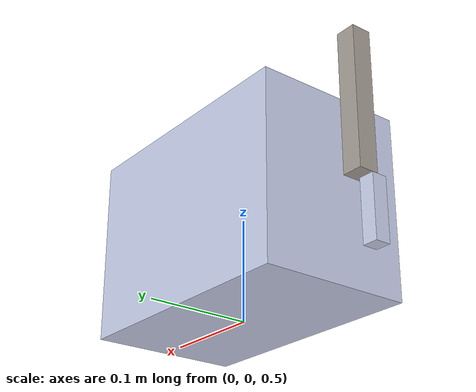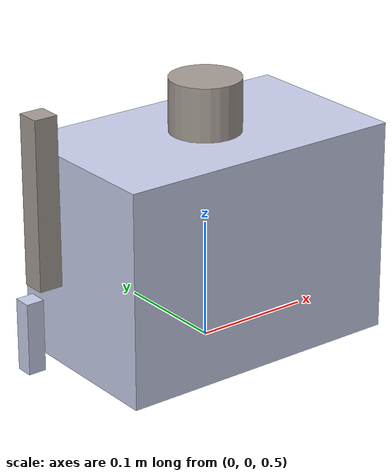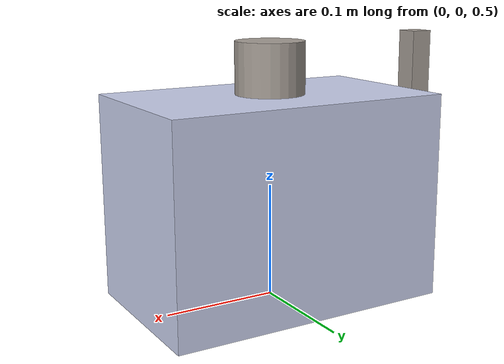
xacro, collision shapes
<?xml version="1.0"?>
<robot xmlns:xacro="http://www.ros.org/wiki/xacro" name="invert_pendulum_URDF">

    <xacro:include filename="inertial_macros.xacro" />
    <xacro:include filename="pendulum_params.xacro" />
    <xacro:include filename="robot_material.xacro" />
    <xacro:include filename="gazebo_full.xacro" />

    <!-- WORLD LINK (Fixed to ground) -->
    <link name="world"/>

    <!-- FIXED JOINT - RAISED TO PREVENT GROUND COLLISION -->
    <joint name="base" type="fixed">
        <parent link="world"/>
        <child link="base_link"/>
        <!-- Raised by 0.5m to keep pendulums above ground when hanging down -->
        <origin xyz="0 0 0.5" rpy="0 0 0"/>
    </joint>

    <!-- BASE LINK -->
    <link name="base_link">
        <xacro:inertial_box mass="${mass_base}" x="0.25" y="0.15" z="0.18">
            <origin xyz="4.35011143188239E-06 -4.26974202710915E-05 0.0926893522450359" rpy="0 0 0" />
        </xacro:inertial_box>

        <visual>
            <origin xyz="0 0 0" rpy="0 0 0" />
            <geometry>
                <mesh filename="package://double_invert_pendulum_description/meshes/base_link.STL" />
            </geometry>
            <material name="light_blue"/>
        </visual>
        <collision>
            <origin xyz="0 0 0.09" rpy="0 0 0" />
            <geometry>
                <box size="0.25 0.15 0.18"/>
            </geometry>
        </collision>
    </link>

    <!-- REVOLUTE LINK (ARM - CONTINUOUS ROTATION) -->
    <joint name="revolute_joint" type="continuous">
        <parent link="base_link"/>
        <child link="revolute_Link"/>
        <origin xyz="${revolute_joint_x} ${revolute_joint_y} ${revolute_joint_z}" rpy="0 0 0"/>
        <axis xyz="0 0 1"/>
        <limit effort="${joint_effort}" velocity="${joint_velocity}"/>
        <dynamics damping="${revolute_joint_damping}" friction="${revolute_joint_friction}"/>
    </joint>

    <link name="revolute_Link">
        <xacro:inertial_cylinder mass="${mass_revolute}" length="0.05" radius="0.03">
            <origin xyz="-0.0393104703 -0.0011200394 -0.0049654099" rpy="0 0 0" />
        </xacro:inertial_cylinder>

        <visual>
            <origin xyz="0 0 0" rpy="0 0 0" />
            <geometry>
                <mesh filename="package://double_invert_pendulum_description/meshes/revolute_Link.STL" />
            </geometry>
            <material name="brown"/>
        </visual>
        <collision>
            <origin xyz="0 0 0" rpy="0 0 0" />
            <geometry>
                <cylinder radius="0.03" length="0.05"/>
            </geometry>
        </collision>
    </link>

    <!-- FIRST PENDULUM LINK -->
    <joint name="first_pendulum_joint" type="revolute">
        <parent link="revolute_Link"/>
        <child link="first_pendulum_link"/>
        <origin xyz="${pendulum1_joint_x} ${pendulum1_joint_y} ${pendulum1_joint_z}" rpy="1.5708 0 -1.5708"/>
        <axis xyz="0 0 1"/>
        <limit effort="100.0" velocity="100.0" lower="${joint_lower_limit}" upper="${joint_upper_limit}"/>
        <dynamics damping="${first_pendulum_damping}" friction="${first_pendulum_friction}"/>
    </joint>

    <link name="first_pendulum_link">
        <xacro:inertial_box mass="${mass_pendulum1}" x="0.02" y="0.14" z="0.02">
            <origin xyz="-0.0000001372 -0.0878320187 0.0001351167" rpy="0 0 0" />
        </xacro:inertial_box>

        <visual>
            <origin xyz="0 0 0" rpy="0 0 0" />
            <geometry>
                <mesh filename="package://double_invert_pendulum_description/meshes/first_pendulum_link.STL" />
            </geometry>
            <material name="brown"/>
        </visual>
        <collision>
            <origin xyz="0 -0.065 0" rpy="0 0 0" />
            <geometry>
                <box size="0.02 0.14 0.02"/>
            </geometry>
        </collision>
    </link>

    <!-- SECOND PENDULUM LINK -->
    <joint name="second_pendulum_joint" type="revolute">
        <parent link="first_pendulum_link"/>
        <child link="second_pendulum_link"/>
        <origin xyz="${pendulum2_joint_x} ${pendulum2_joint_y} ${pendulum2_joint_z}" rpy="0 0 0"/>
        <axis xyz="0 0 1"/>
        <limit effort="100.0" velocity="100.0" lower="${joint_lower_limit}" upper="${joint_upper_limit}"/>
        <dynamics damping="${second_pendulum_damping}" friction="${second_pendulum_friction}"/>
    </joint>

    <link name="second_pendulum_link">
        <xacro:inertial_box mass="${mass_pendulum2}" x="0.015" y="0.06" z="0.015">
            <origin xyz="-0.0000028766 -0.0299439674 0.001944771" rpy="0 0 0" />
        </xacro:inertial_box>

        <visual>
            <origin xyz="0 0 0" rpy="0 0 0" />
            <geometry>
                <mesh filename="package://double_invert_pendulum_description/meshes/second_pendulum_link.STL" />
            </geometry>
            <material name="light_blue"/>
        </visual>
        <collision>
            <origin xyz="0 -0.03 0" rpy="0 0 0" />
            <geometry>
                <box size="0.015 0.06 0.015"/>
            </geometry>
        </collision>
    </link>

</robot>

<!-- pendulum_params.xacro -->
<robot xmlns:xacro="http://www.ros.org/wiki/xacro">

    <!-- Constants -->
    <xacro:property name="PI" value="3.14159265359"/>

    <!-- JOINT POSITIONS (from inverted_pendulum_new.urdf) -->

    <!-- Revolute joint (arm) position -->
    <xacro:property name="revolute_joint_x" value="0"/>
    <xacro:property name="revolute_joint_y" value="0"/>
    <xacro:property name="revolute_joint_z" value="0.2"/>

    <!-- First pendulum joint position -->
    <xacro:property name="pendulum1_joint_x" value="-0.157"/>
    <xacro:property name="pendulum1_joint_y" value="-0.0002"/>
    <xacro:property name="pendulum1_joint_z" value="0.0232"/>

    <!-- Second pendulum joint position -->
    <xacro:property name="pendulum2_joint_x" value="0"/>
    <xacro:property name="pendulum2_joint_y" value="-0.1432"/>
    <xacro:property name="pendulum2_joint_z" value="0.0135"/>

    <!-- MASSES (from inverted_pendulum_new.urdf) -->
    <xacro:property name="mass_base" value="0.951310569253784"/>
    <xacro:property name="mass_revolute" value="0.22015507085087"/>
    <xacro:property name="mass_pendulum1" value="0.190"/>  <!-- ~0.1 kg -->
    <xacro:property name="mass_pendulum2" value="0.140"/>  <!-- ~0.073 kg -->

    <!-- RESEARCH PAPER PARAMETERS -->
    <!-- From "Transition Control of a Rotary Double Inverted Pendulum Using Direct Collocation" -->

    <!-- Masses (for validation - should match above or be adjusted) -->
    <xacro:property name="M1_paper" value="0.187"/>  <!-- First pendulum mass from paper -->
    <xacro:property name="M2_paper" value="0.132"/>  <!-- Second pendulum mass from paper -->

    <!-- Center of Mass Lengths -->
    <xacro:property name="l1" value="0.072"/>   <!-- First pendulum CoM from pivot -->
    <xacro:property name="l2" value="0.133"/>   <!-- Second pendulum CoM from pivot -->

    <!-- Total Lengths -->
    <xacro:property name="L1" value="0.1645"/>  <!-- First pendulum total length -->
    <xacro:property name="R1" value="0.1625"/>  <!-- Arm radius -->
    <xacro:property name="r1" value="0.1597"/>  <!-- Additional arm parameter -->
    <xacro:property name="r2" value="0.0209"/>  <!-- Additional parameter -->

    <!-- Inertias (kg·m²) from research paper -->
    <xacro:property name="Ixx1" value="1.0415e-3"/>
    <xacro:property name="Ixx2" value="8.8210e-4"/>
    <xacro:property name="Iyy1" value="4.3569e-3"/>
    <xacro:property name="Iyy2" value="4.9793e-3"/>
    <xacro:property name="Izz1" value="3.3179e-3"/>
    <xacro:property name="Izz2" value="4.8178e-3"/>
    <xacro:property name="Ixz1" value="3.7770e-4"/>
    <xacro:property name="Ixz2" value="1.9823e-4"/>

    <!-- Friction coefficients from paper -->
    <xacro:property name="c1_paper" value="2.41e-6"/>
    <xacro:property name="c2_paper" value="1.09e-6"/>

    <!-- JOINT LIMITS AND DYNAMICS -->

    <!-- Joint effort and velocity limits -->
    <xacro:property name="joint_effort" value="100.0"/>
    <xacro:property name="joint_velocity" value= "7.5"/>
    <xacro:property name="joint_lower_limit" value="${-2*PI}"/>
    <xacro:property name="joint_upper_limit" value="${2*PI}"/>

    <!-- Revolute Joint (Arm) Dynamics - ACTUATED -->
    <xacro:property name="revolute_joint_damping" value="${c1_paper}"/>
    <xacro:property name="revolute_joint_friction" value="0.001"/>

    <!-- First Pendulum Joint Dynamics - PASSIVE -->
    <xacro:property name="first_pendulum_damping" value="${c1_paper}"/>
    <xacro:property name="first_pendulum_friction" value="${c1_paper}"/>

    <!-- Second Pendulum Joint Dynamics - PASSIVE -->
    <xacro:property name="second_pendulum_damping" value="${c2_paper}"/>
    <xacro:property name="second_pendulum_friction" value="${c2_paper}"/>

    <!-- COLLISION GEOMETRY PARAMETERS -->

    <!-- Base collision box -->
    <xacro:property name="base_box_x" value="0.25"/>
    <xacro:property name="base_box_y" value="0.15"/>
    <xacro:property name="base_box_z" value="0.18"/>

    <!-- Revolute link collision cylinder -->
    <xacro:property name="revolute_radius" value="0.03"/>
    <xacro:property name="revolute_length" value="0.05"/>

    <!-- First pendulum collision box -->
    <xacro:property name="pendulum1_box_x" value="0.02"/>
    <xacro:property name="pendulum1_box_y" value="0.14"/>
    <xacro:property name="pendulum1_box_z" value="0.02"/>

    <!-- Second pendulum collision box -->
    <xacro:property name="pendulum2_box_x" value="0.015"/>
    <xacro:property name="pendulum2_box_y" value="0.11"/>
    <xacro:property name="pendulum2_box_z" value="0.015"/>

</robot>

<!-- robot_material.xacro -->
<robot xmlns:xacro="http://www.ros.org/wiki/xacro" >
    <material name="white">
        <color rgba="1 1 1 1" />
    </material>

    <material name="orange">
        <color rgba="1 0.3 0.1 1"/>
    </material>

    <material name="blue">
        <color rgba="0.2 0.2 1 1"/>
    </material>

    <material name="black">
        <color rgba="0 0 0 1"/>
    </material>

    <material name="red">
        <color rgba="1 0 0 1"/>
    </material>

    <material name="green">
        <color rgba="0 1 0 1"/>
    </material>

    <material name="yellow">
        <color rgba="1 1 0 1"/>
    </material>

    <material name="pink">
        <color rgba="1 0.5 0.5 1"/>
    </material>

    <material name="brown">
        <color rgba="0.650980392156863 0.619607843137255 0.588235294117647 1"/>
    </material>

    <material name="light_blue">
        <color rgba="0.792156862745098 0.819607843137255 0.933333333333333 1"/>
    </material>
</robot>
